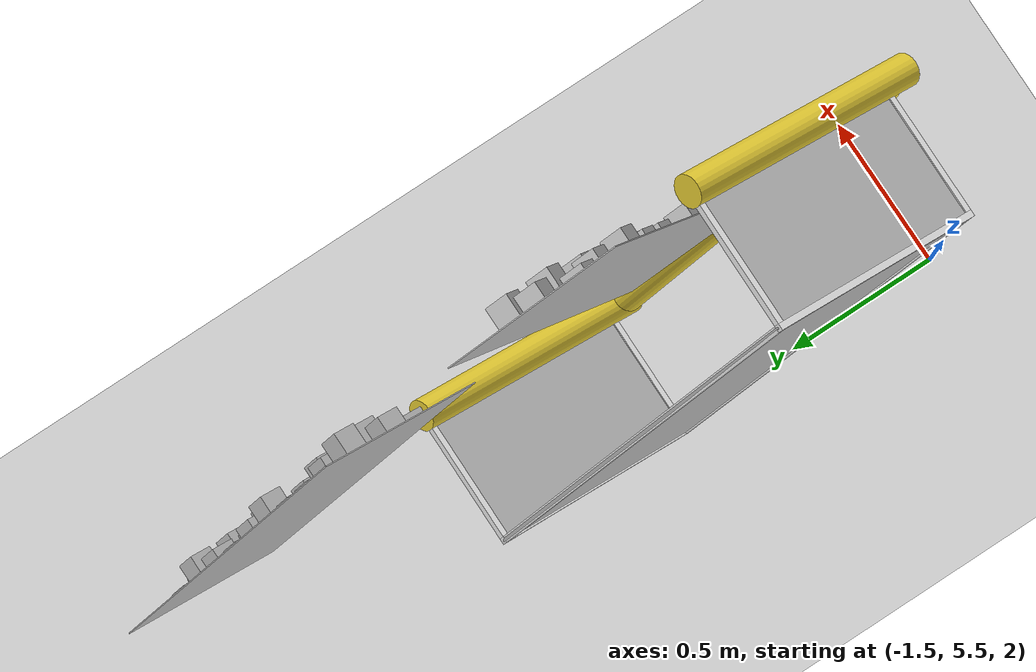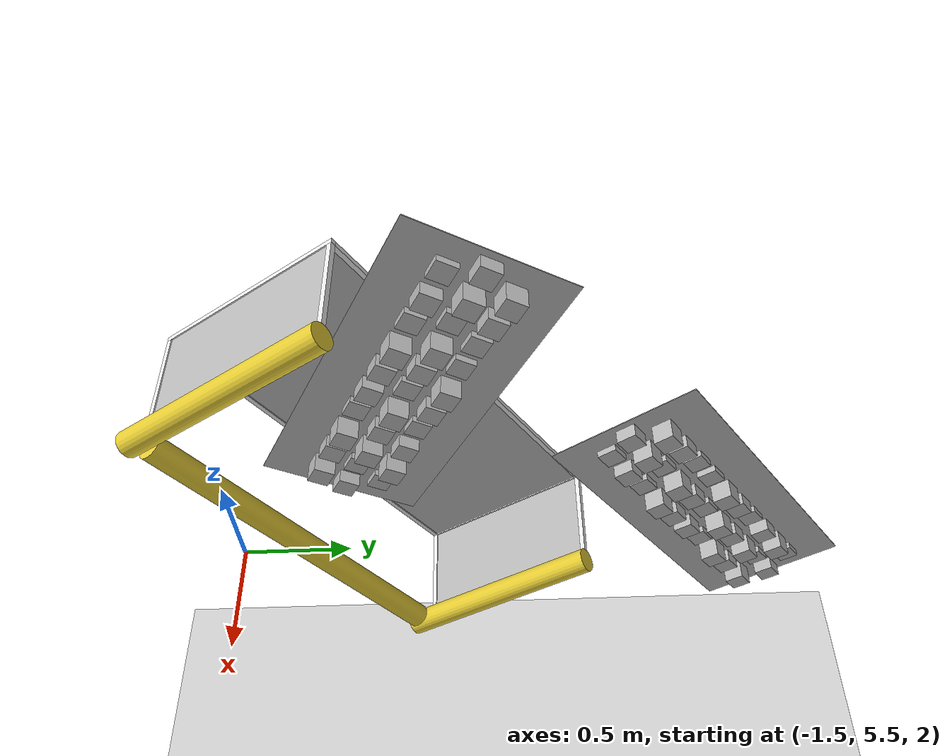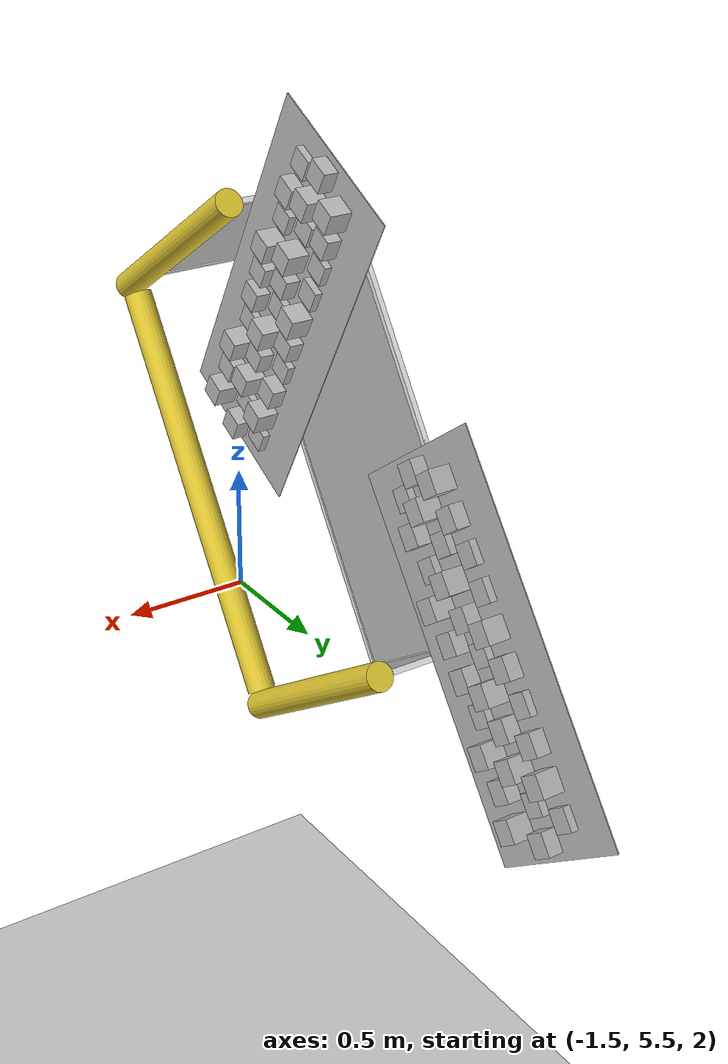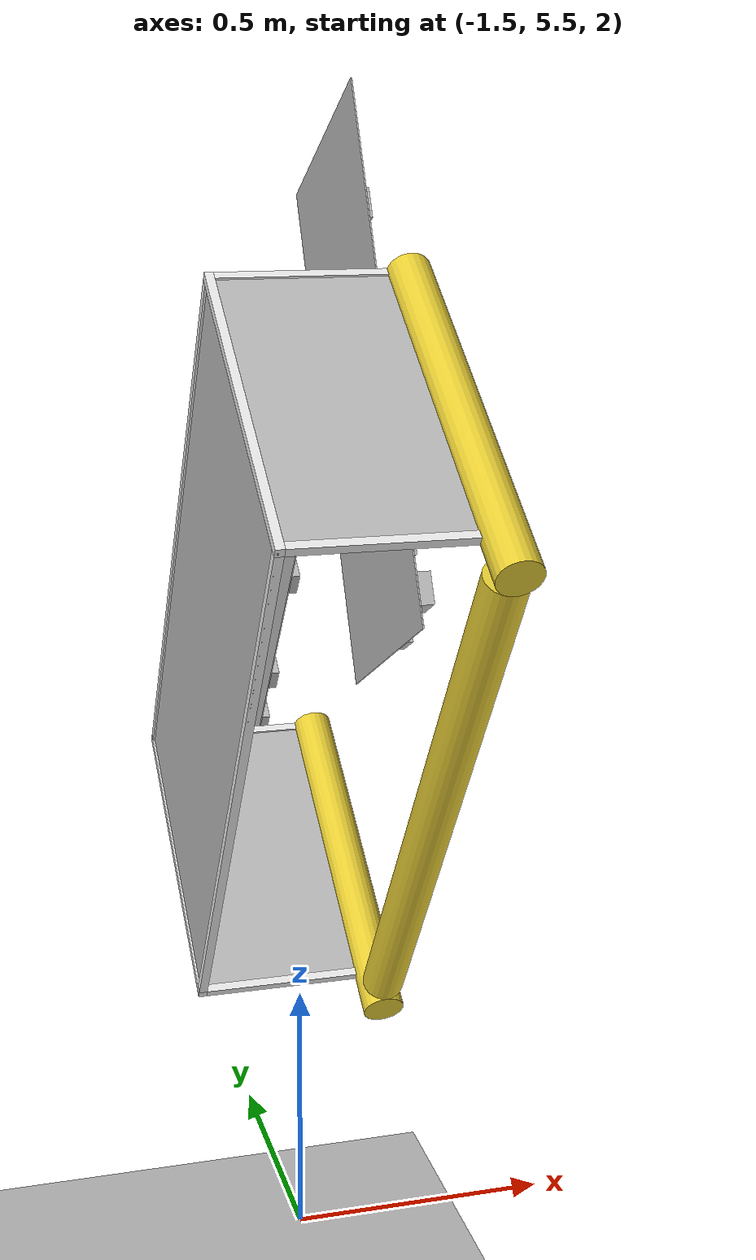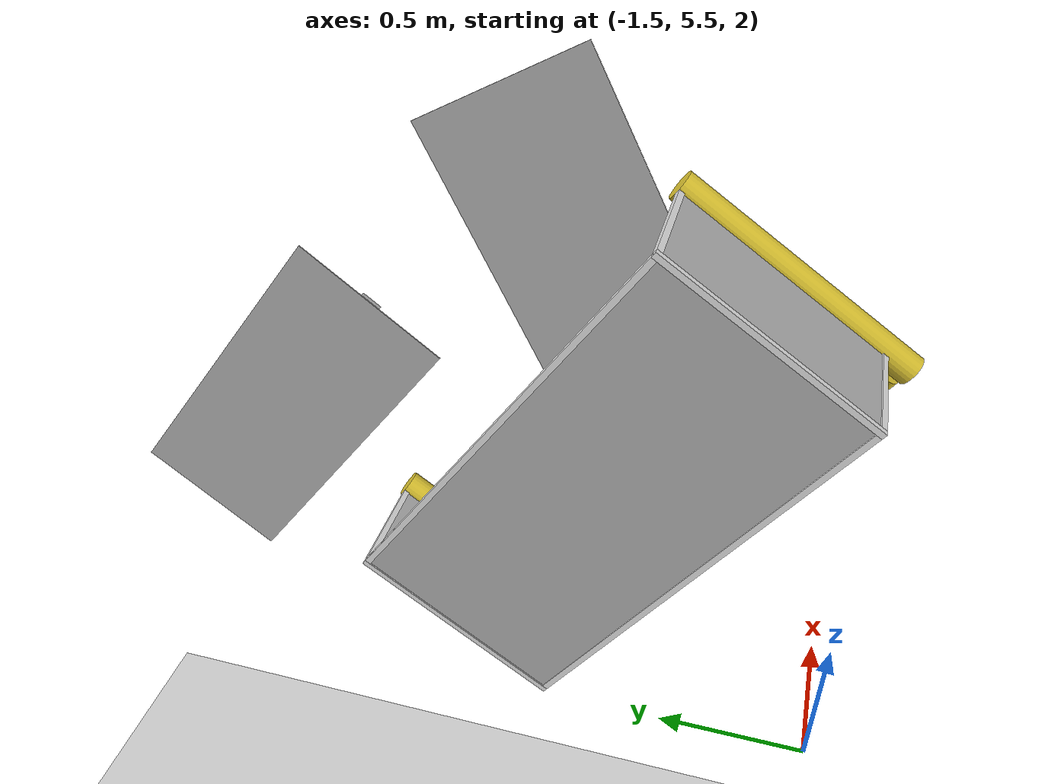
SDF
<sdf version="1.4">
 <world name="default">
  <model name="ground_plane">
   <static>1</static>
   <link name="link">
    <collision name="collision">
     <geometry><plane><normal>0 0 1</normal><size>100 100</size></plane></geometry>
     <surface><friction><ode><mu>100</mu><mu2>50</mu2></ode></friction></surface>
    </collision>
    <visual name="visual">
     <cast_shadows>0</cast_shadows>
     <geometry><plane><normal>0 0 1</normal><size>100 100</size></plane></geometry>
     <material>
      <script><uri>file://media/materials/scripts/gazebo.material</uri><name>Gazebo/Grey</name></script>
     </material>
    </visual>
    <velocity_decay><linear>0</linear><angular>0</angular></velocity_decay>
   </link>
  </model>
  <model name="frc2016_roughterrain">
   <static>1</static>
   <link name="link">
    <visual name="platform">
     <pose>0 0 0.08269 0 -0 0</pose>
     <geometry><box><size>1.27 0.5969 0.003175</size></box></geometry>
    </visual>
    <collision name="platform">
     <pose>0 0 0.08269 0 -0 0</pose>
     <geometry><box><size>1.27 0.5969 0.003175</size></box></geometry>
    </collision>
    <visual name="row1_block1_sm">
     <pose>0.51435 0.1143 0.09698 0 -0 0</pose>
     <geometry><box><size>0.0762 0.0762 0.0254</size></box></geometry>
    </visual>
    <collision name="row1_block1_sm">
     <pose>0.51435 0.1143 0.09698 0 -0 0</pose>
     <geometry><box><size>0.0762 0.0762 0.0254</size></box></geometry>
    </collision>
    <visual name="row1_block2_lg">
     <pose>0.40005 0.1143 0.12238 0 -0 0</pose>
     <geometry><box><size>0.0762 0.0762 0.0762</size></box></geometry>
    </visual>
    <collision name="row1_block2_lg">
     <pose>0.40005 0.1143 0.12238 0 -0 0</pose>
     <geometry><box><size>0.0762 0.0762 0.0762</size></box></geometry>
    </collision>
    <visual name="row1_block3_md">
     <pose>0.28575 0.1143 0.10968 0 -0 0</pose>
     <geometry><box><size>0.0762 0.0762 0.0508</size></box></geometry>
    </visual>
    <collision name="row1_block3_md">
     <pose>0.28575 0.1143 0.10968 0 -0 0</pose>
     <geometry><box><size>0.0762 0.0762 0.0508</size></box></geometry>
    </collision>
    <visual name="row1_block4_sm">
     <pose>0.17145 0.1143 0.09698 0 -0 0</pose>
     <geometry><box><size>0.0762 0.0762 0.0254</size></box></geometry>
    </visual>
    <collision name="row1_block4_sm">
     <pose>0.17145 0.1143 0.09698 0 -0 0</pose>
     <geometry><box><size>0.0762 0.0762 0.0254</size></box></geometry>
    </collision>
    <visual name="row1_block5_md">
     <pose>0.05715 0.1143 0.10968 0 -0 0</pose>
     <geometry><box><size>0.0762 0.0762 0.0508</size></box></geometry>
    </visual>
    <collision name="row1_block5_md">
     <pose>0.05715 0.1143 0.10968 0 -0 0</pose>
     <geometry><box><size>0.0762 0.0762 0.0508</size></box></geometry>
    </collision>
    <visual name="row1_block6_lg">
     <pose>-0.05715 0.1143 0.12238 0 -0 0</pose>
     <geometry><box><size>0.0762 0.0762 0.0762</size></box></geometry>
    </visual>
    <collision name="row1_block6_lg">
     <pose>-0.05715 0.1143 0.12238 0 -0 0</pose>
     <geometry><box><size>0.0762 0.0762 0.0762</size></box></geometry>
    </collision>
    <visual name="row1_block7_sm">
     <pose>-0.17145 0.1143 0.09698 0 -0 0</pose>
     <geometry><box><size>0.0762 0.0762 0.0254</size></box></geometry>
    </visual>
    <collision name="row1_block7_sm">
     <pose>-0.17145 0.1143 0.09698 0 -0 0</pose>
     <geometry><box><size>0.0762 0.0762 0.0254</size></box></geometry>
    </collision>
    <visual name="row1_block8_sm">
     <pose>-0.28575 0.1143 0.09698 0 -0 0</pose>
     <geometry><box><size>0.0762 0.0762 0.0254</size></box></geometry>
    </visual>
    <collision name="row1_block8_sm">
     <pose>-0.28575 0.1143 0.09698 0 -0 0</pose>
     <geometry><box><size>0.0762 0.0762 0.0254</size></box></geometry>
    </collision>
    <visual name="row1_block9_md">
     <pose>-0.40005 0.1143 0.10968 0 -0 0</pose>
     <geometry><box><size>0.0762 0.0762 0.0508</size></box></geometry>
    </visual>
    <collision name="row1_block9_md">
     <pose>-0.40005 0.1143 0.10968 0 -0 0</pose>
     <geometry><box><size>0.0762 0.0762 0.0508</size></box></geometry>
    </collision>
    <visual name="row1_block10_lg">
     <pose>-0.51435 0.1143 0.12238 0 -0 0</pose>
     <geometry><box><size>0.0762 0.0762 0.0762</size></box></geometry>
    </visual>
    <collision name="row1_block10_lg">
     <pose>-0.51435 0.1143 0.12238 0 -0 0</pose>
     <geometry><box><size>0.0762 0.0762 0.0762</size></box></geometry>
    </collision>
    <visual name="row2_block1_md">
     <pose>0.5715 0 0.10968 0 -0 0</pose>
     <geometry><box><size>0.0762 0.0762 0.0508</size></box></geometry>
    </visual>
    <collision name="row2_block1_md">
     <pose>0.5715 0 0.10968 0 -0 0</pose>
     <geometry><box><size>0.0762 0.0762 0.0508</size></box></geometry>
    </collision>
    <visual name="row2_block2_sm">
     <pose>0.4572 0 0.09698 0 -0 0</pose>
     <geometry><box><size>0.0762 0.0762 0.0254</size></box></geometry>
    </visual>
    <collision name="row2_block2_sm">
     <pose>0.4572 0 0.09698 0 -0 0</pose>
     <geometry><box><size>0.0762 0.0762 0.0254</size></box></geometry>
    </collision>
    <visual name="row2_block3_lg">
     <pose>0.3429 0 0.12238 0 -0 0</pose>
     <geometry><box><size>0.0762 0.0762 0.0762</size></box></geometry>
    </visual>
    <collision name="row2_block3_lg">
     <pose>0.3429 0 0.12238 0 -0 0</pose>
     <geometry><box><size>0.0762 0.0762 0.0762</size></box></geometry>
    </collision>
    <visual name="row2_block4_md">
     <pose>0.2286 0 0.10968 0 -0 0</pose>
     <geometry><box><size>0.0762 0.0762 0.0508</size></box></geometry>
    </visual>
    <collision name="row2_block4_md">
     <pose>0.2286 0 0.10968 0 -0 0</pose>
     <geometry><box><size>0.0762 0.0762 0.0508</size></box></geometry>
    </collision>
    <visual name="row2_block5_lg">
     <pose>0.1143 0 0.12238 0 -0 0</pose>
     <geometry><box><size>0.0762 0.0762 0.0762</size></box></geometry>
    </visual>
    <collision name="row2_block5_lg">
     <pose>0.1143 0 0.12238 0 -0 0</pose>
     <geometry><box><size>0.0762 0.0762 0.0762</size></box></geometry>
    </collision>
    <visual name="row2_block6_sm">
     <pose>0 0 0.09698 0 -0 0</pose>
     <geometry><box><size>0.0762 0.0762 0.0254</size></box></geometry>
    </visual>
    <collision name="row2_block6_sm">
     <pose>0 0 0.09698 0 -0 0</pose>
     <geometry><box><size>0.0762 0.0762 0.0254</size></box></geometry>
    </collision>
    <visual name="row2_block7_md">
     <pose>-0.1143 0 0.10968 0 -0 0</pose>
     <geometry><box><size>0.0762 0.0762 0.0508</size></box></geometry>
    </visual>
    <collision name="row2_block7_md">
     <pose>-0.1143 0 0.10968 0 -0 0</pose>
     <geometry><box><size>0.0762 0.0762 0.0508</size></box></geometry>
    </collision>
    <visual name="row2_block8_lg">
     <pose>-0.2286 0 0.12238 0 -0 0</pose>
     <geometry><box><size>0.0762 0.0762 0.0762</size></box></geometry>
    </visual>
    <collision name="row2_block8_lg">
     <pose>-0.2286 0 0.12238 0 -0 0</pose>
     <geometry><box><size>0.0762 0.0762 0.0762</size></box></geometry>
    </collision>
    <visual name="row2_block9_sm">
     <pose>-0.3429 0 0.09698 0 -0 0</pose>
     <geometry><box><size>0.0762 0.0762 0.0254</size></box></geometry>
    </visual>
    <collision name="row2_block9_sm">
     <pose>-0.3429 0 0.09698 0 -0 0</pose>
     <geometry><box><size>0.0762 0.0762 0.0254</size></box></geometry>
    </collision>
    <visual name="row2_block10_lg">
     <pose>-0.4572 0 0.12238 0 -0 0</pose>
     <geometry><box><size>0.0762 0.0762 0.0762</size></box></geometry>
    </visual>
    <collision name="row2_block10_lg">
     <pose>-0.4572 0 0.12238 0 -0 0</pose>
     <geometry><box><size>0.0762 0.0762 0.0762</size></box></geometry>
    </collision>
    <visual name="row2_block11_md">
     <pose>-0.5715 0 0.10968 0 -0 0</pose>
     <geometry><box><size>0.0762 0.0762 0.0508</size></box></geometry>
    </visual>
    <collision name="row2_block11_md">
     <pose>-0.5715 0 0.10968 0 -0 0</pose>
     <geometry><box><size>0.0762 0.0762 0.0508</size></box></geometry>
    </collision>
    <visual name="row3_block1_lg">
     <pose>0.51435 -0.1143 0.12238 0 -0 0</pose>
     <geometry><box><size>0.0762 0.0762 0.0762</size></box></geometry>
    </visual>
    <collision name="row3_block1_lg">
     <pose>0.51435 -0.1143 0.12238 0 -0 0</pose>
     <geometry><box><size>0.0762 0.0762 0.0762</size></box></geometry>
    </collision>
    <visual name="row3_block2_md">
     <pose>0.40005 -0.1143 0.10968 0 -0 0</pose>
     <geometry><box><size>0.0762 0.0762 0.0508</size></box></geometry>
    </visual>
    <collision name="row3_block2_md">
     <pose>0.40005 -0.1143 0.10968 0 -0 0</pose>
     <geometry><box><size>0.0762 0.0762 0.0508</size></box></geometry>
    </collision>
    <visual name="row3_block3_lg">
     <pose>0.28575 -0.1143 0.12238 0 -0 0</pose>
     <geometry><box><size>0.0762 0.0762 0.0762</size></box></geometry>
    </visual>
    <collision name="row3_block3_lg">
     <pose>0.28575 -0.1143 0.12238 0 -0 0</pose>
     <geometry><box><size>0.0762 0.0762 0.0762</size></box></geometry>
    </collision>
    <visual name="row3_block4_sm">
     <pose>0.17145 -0.1143 0.09698 0 -0 0</pose>
     <geometry><box><size>0.0762 0.0762 0.0254</size></box></geometry>
    </visual>
    <collision name="row3_block4_sm">
     <pose>0.17145 -0.1143 0.09698 0 -0 0</pose>
     <geometry><box><size>0.0762 0.0762 0.0254</size></box></geometry>
    </collision>
    <visual name="row3_block5_md">
     <pose>0.05715 -0.1143 0.10968 0 -0 0</pose>
     <geometry><box><size>0.0762 0.0762 0.0508</size></box></geometry>
    </visual>
    <collision name="row3_block5_md">
     <pose>0.05715 -0.1143 0.10968 0 -0 0</pose>
     <geometry><box><size>0.0762 0.0762 0.0508</size></box></geometry>
    </collision>
    <visual name="row3_block6_md">
     <pose>-0.05715 -0.1143 0.10968 0 -0 0</pose>
     <geometry><box><size>0.0762 0.0762 0.0508</size></box></geometry>
    </visual>
    <collision name="row3_block6_md">
     <pose>-0.05715 -0.1143 0.10968 0 -0 0</pose>
     <geometry><box><size>0.0762 0.0762 0.0508</size></box></geometry>
    </collision>
    <visual name="row3_block7_lg">
     <pose>-0.17145 -0.1143 0.12238 0 -0 0</pose>
     <geometry><box><size>0.0762 0.0762 0.0762</size></box></geometry>
    </visual>
    <collision name="row3_block7_lg">
     <pose>-0.17145 -0.1143 0.12238 0 -0 0</pose>
     <geometry><box><size>0.0762 0.0762 0.0762</size></box></geometry>
    </collision>
    <visual name="row3_block8_sm">
     <pose>-0.28575 -0.1143 0.09698 0 -0 0</pose>
     <geometry><box><size>0.0762 0.0762 0.0254</size></box></geometry>
    </visual>
    <collision name="row3_block8_sm">
     <pose>-0.28575 -0.1143 0.09698 0 -0 0</pose>
     <geometry><box><size>0.0762 0.0762 0.0254</size></box></geometry>
    </collision>
    <visual name="row3_block9_md">
     <pose>-0.40005 -0.1143 0.10968 0 -0 0</pose>
     <geometry><box><size>0.0762 0.0762 0.0508</size></box></geometry>
    </visual>
    <collision name="row3_block9_md">
     <pose>-0.40005 -0.1143 0.10968 0 -0 0</pose>
     <geometry><box><size>0.0762 0.0762 0.0508</size></box></geometry>
    </collision>
    <visual name="row3_block10_sm">
     <pose>-0.51435 -0.1143 0.09698 0 -0 0</pose>
     <geometry><box><size>0.0762 0.0762 0.0254</size></box></geometry>
    </visual>
    <collision name="row3_block10_sm">
     <pose>-0.51435 -0.1143 0.09698 0 -0 0</pose>
     <geometry><box><size>0.0762 0.0762 0.0254</size></box></geometry>
    </collision>
    <velocity_decay><linear>0</linear><angular>0</angular></velocity_decay>
   </link>
   <pose>-1.22765 6.41707 3.53548 -1.57835 1.07404 -1.57744</pose>
  </model>
  <model name="frc2016_roughterrain_3">
   <static>1</static>
   <link name="link">
    <visual name="platform">
     <pose>0 0 0.08269 0 -0 0</pose>
     <geometry><box><size>1.27 0.5969 0.003175</size></box></geometry>
    </visual>
    <collision name="platform">
     <pose>0 0 0.08269 0 -0 0</pose>
     <geometry><box><size>1.27 0.5969 0.003175</size></box></geometry>
    </collision>
    <visual name="row1_block1_sm">
     <pose>0.51435 0.1143 0.09698 0 -0 0</pose>
     <geometry><box><size>0.0762 0.0762 0.0254</size></box></geometry>
    </visual>
    <collision name="row1_block1_sm">
     <pose>0.51435 0.1143 0.09698 0 -0 0</pose>
     <geometry><box><size>0.0762 0.0762 0.0254</size></box></geometry>
    </collision>
    <visual name="row1_block2_lg">
     <pose>0.40005 0.1143 0.12238 0 -0 0</pose>
     <geometry><box><size>0.0762 0.0762 0.0762</size></box></geometry>
    </visual>
    <collision name="row1_block2_lg">
     <pose>0.40005 0.1143 0.12238 0 -0 0</pose>
     <geometry><box><size>0.0762 0.0762 0.0762</size></box></geometry>
    </collision>
    <visual name="row1_block3_md">
     <pose>0.28575 0.1143 0.10968 0 -0 0</pose>
     <geometry><box><size>0.0762 0.0762 0.0508</size></box></geometry>
    </visual>
    <collision name="row1_block3_md">
     <pose>0.28575 0.1143 0.10968 0 -0 0</pose>
     <geometry><box><size>0.0762 0.0762 0.0508</size></box></geometry>
    </collision>
    <visual name="row1_block4_sm">
     <pose>0.17145 0.1143 0.09698 0 -0 0</pose>
     <geometry><box><size>0.0762 0.0762 0.0254</size></box></geometry>
    </visual>
    <collision name="row1_block4_sm">
     <pose>0.17145 0.1143 0.09698 0 -0 0</pose>
     <geometry><box><size>0.0762 0.0762 0.0254</size></box></geometry>
    </collision>
    <visual name="row1_block5_md">
     <pose>0.05715 0.1143 0.10968 0 -0 0</pose>
     <geometry><box><size>0.0762 0.0762 0.0508</size></box></geometry>
    </visual>
    <collision name="row1_block5_md">
     <pose>0.05715 0.1143 0.10968 0 -0 0</pose>
     <geometry><box><size>0.0762 0.0762 0.0508</size></box></geometry>
    </collision>
    <visual name="row1_block6_lg">
     <pose>-0.05715 0.1143 0.12238 0 -0 0</pose>
     <geometry><box><size>0.0762 0.0762 0.0762</size></box></geometry>
    </visual>
    <collision name="row1_block6_lg">
     <pose>-0.05715 0.1143 0.12238 0 -0 0</pose>
     <geometry><box><size>0.0762 0.0762 0.0762</size></box></geometry>
    </collision>
    <visual name="row1_block7_sm">
     <pose>-0.17145 0.1143 0.09698 0 -0 0</pose>
     <geometry><box><size>0.0762 0.0762 0.0254</size></box></geometry>
    </visual>
    <collision name="row1_block7_sm">
     <pose>-0.17145 0.1143 0.09698 0 -0 0</pose>
     <geometry><box><size>0.0762 0.0762 0.0254</size></box></geometry>
    </collision>
    <visual name="row1_block8_sm">
     <pose>-0.28575 0.1143 0.09698 0 -0 0</pose>
     <geometry><box><size>0.0762 0.0762 0.0254</size></box></geometry>
    </visual>
    <collision name="row1_block8_sm">
     <pose>-0.28575 0.1143 0.09698 0 -0 0</pose>
     <geometry><box><size>0.0762 0.0762 0.0254</size></box></geometry>
    </collision>
    <visual name="row1_block9_md">
     <pose>-0.40005 0.1143 0.10968 0 -0 0</pose>
     <geometry><box><size>0.0762 0.0762 0.0508</size></box></geometry>
    </visual>
    <collision name="row1_block9_md">
     <pose>-0.40005 0.1143 0.10968 0 -0 0</pose>
     <geometry><box><size>0.0762 0.0762 0.0508</size></box></geometry>
    </collision>
    <visual name="row1_block10_lg">
     <pose>-0.51435 0.1143 0.12238 0 -0 0</pose>
     <geometry><box><size>0.0762 0.0762 0.0762</size></box></geometry>
    </visual>
    <collision name="row1_block10_lg">
     <pose>-0.51435 0.1143 0.12238 0 -0 0</pose>
     <geometry><box><size>0.0762 0.0762 0.0762</size></box></geometry>
    </collision>
    <visual name="row2_block1_md">
     <pose>0.5715 0 0.10968 0 -0 0</pose>
     <geometry><box><size>0.0762 0.0762 0.0508</size></box></geometry>
    </visual>
    <collision name="row2_block1_md">
     <pose>0.5715 0 0.10968 0 -0 0</pose>
     <geometry><box><size>0.0762 0.0762 0.0508</size></box></geometry>
    </collision>
    <visual name="row2_block2_sm">
     <pose>0.4572 0 0.09698 0 -0 0</pose>
     <geometry><box><size>0.0762 0.0762 0.0254</size></box></geometry>
    </visual>
    <collision name="row2_block2_sm">
     <pose>0.4572 0 0.09698 0 -0 0</pose>
     <geometry><box><size>0.0762 0.0762 0.0254</size></box></geometry>
    </collision>
    <visual name="row2_block3_lg">
     <pose>0.3429 0 0.12238 0 -0 0</pose>
     <geometry><box><size>0.0762 0.0762 0.0762</size></box></geometry>
    </visual>
    <collision name="row2_block3_lg">
     <pose>0.3429 0 0.12238 0 -0 0</pose>
     <geometry><box><size>0.0762 0.0762 0.0762</size></box></geometry>
    </collision>
    <visual name="row2_block4_md">
     <pose>0.2286 0 0.10968 0 -0 0</pose>
     <geometry><box><size>0.0762 0.0762 0.0508</size></box></geometry>
    </visual>
    <collision name="row2_block4_md">
     <pose>0.2286 0 0.10968 0 -0 0</pose>
     <geometry><box><size>0.0762 0.0762 0.0508</size></box></geometry>
    </collision>
    <visual name="row2_block5_lg">
     <pose>0.1143 0 0.12238 0 -0 0</pose>
     <geometry><box><size>0.0762 0.0762 0.0762</size></box></geometry>
    </visual>
    <collision name="row2_block5_lg">
     <pose>0.1143 0 0.12238 0 -0 0</pose>
     <geometry><box><size>0.0762 0.0762 0.0762</size></box></geometry>
    </collision>
    <visual name="row2_block6_sm">
     <pose>0 0 0.09698 0 -0 0</pose>
     <geometry><box><size>0.0762 0.0762 0.0254</size></box></geometry>
    </visual>
    <collision name="row2_block6_sm">
     <pose>0 0 0.09698 0 -0 0</pose>
     <geometry><box><size>0.0762 0.0762 0.0254</size></box></geometry>
    </collision>
    <visual name="row2_block7_md">
     <pose>-0.1143 0 0.10968 0 -0 0</pose>
     <geometry><box><size>0.0762 0.0762 0.0508</size></box></geometry>
    </visual>
    <collision name="row2_block7_md">
     <pose>-0.1143 0 0.10968 0 -0 0</pose>
     <geometry><box><size>0.0762 0.0762 0.0508</size></box></geometry>
    </collision>
    <visual name="row2_block8_lg">
     <pose>-0.2286 0 0.12238 0 -0 0</pose>
     <geometry><box><size>0.0762 0.0762 0.0762</size></box></geometry>
    </visual>
    <collision name="row2_block8_lg">
     <pose>-0.2286 0 0.12238 0 -0 0</pose>
     <geometry><box><size>0.0762 0.0762 0.0762</size></box></geometry>
    </collision>
    <visual name="row2_block9_sm">
     <pose>-0.3429 0 0.09698 0 -0 0</pose>
     <geometry><box><size>0.0762 0.0762 0.0254</size></box></geometry>
    </visual>
    <collision name="row2_block9_sm">
     <pose>-0.3429 0 0.09698 0 -0 0</pose>
     <geometry><box><size>0.0762 0.0762 0.0254</size></box></geometry>
    </collision>
    <visual name="row2_block10_lg">
     <pose>-0.4572 0 0.12238 0 -0 0</pose>
     <geometry><box><size>0.0762 0.0762 0.0762</size></box></geometry>
    </visual>
    <collision name="row2_block10_lg">
     <pose>-0.4572 0 0.12238 0 -0 0</pose>
     <geometry><box><size>0.0762 0.0762 0.0762</size></box></geometry>
    </collision>
    <visual name="row2_block11_md">
     <pose>-0.5715 0 0.10968 0 -0 0</pose>
     <geometry><box><size>0.0762 0.0762 0.0508</size></box></geometry>
    </visual>
    <collision name="row2_block11_md">
     <pose>-0.5715 0 0.10968 0 -0 0</pose>
     <geometry><box><size>0.0762 0.0762 0.0508</size></box></geometry>
    </collision>
    <visual name="row3_block1_lg">
     <pose>0.51435 -0.1143 0.12238 0 -0 0</pose>
     <geometry><box><size>0.0762 0.0762 0.0762</size></box></geometry>
    </visual>
    <collision name="row3_block1_lg">
     <pose>0.51435 -0.1143 0.12238 0 -0 0</pose>
     <geometry><box><size>0.0762 0.0762 0.0762</size></box></geometry>
    </collision>
    <visual name="row3_block2_md">
     <pose>0.40005 -0.1143 0.10968 0 -0 0</pose>
     <geometry><box><size>0.0762 0.0762 0.0508</size></box></geometry>
    </visual>
    <collision name="row3_block2_md">
     <pose>0.40005 -0.1143 0.10968 0 -0 0</pose>
     <geometry><box><size>0.0762 0.0762 0.0508</size></box></geometry>
    </collision>
    <visual name="row3_block3_lg">
     <pose>0.28575 -0.1143 0.12238 0 -0 0</pose>
     <geometry><box><size>0.0762 0.0762 0.0762</size></box></geometry>
    </visual>
    <collision name="row3_block3_lg">
     <pose>0.28575 -0.1143 0.12238 0 -0 0</pose>
     <geometry><box><size>0.0762 0.0762 0.0762</size></box></geometry>
    </collision>
    <visual name="row3_block4_sm">
     <pose>0.17145 -0.1143 0.09698 0 -0 0</pose>
     <geometry><box><size>0.0762 0.0762 0.0254</size></box></geometry>
    </visual>
    <collision name="row3_block4_sm">
     <pose>0.17145 -0.1143 0.09698 0 -0 0</pose>
     <geometry><box><size>0.0762 0.0762 0.0254</size></box></geometry>
    </collision>
    <visual name="row3_block5_md">
     <pose>0.05715 -0.1143 0.10968 0 -0 0</pose>
     <geometry><box><size>0.0762 0.0762 0.0508</size></box></geometry>
    </visual>
    <collision name="row3_block5_md">
     <pose>0.05715 -0.1143 0.10968 0 -0 0</pose>
     <geometry><box><size>0.0762 0.0762 0.0508</size></box></geometry>
    </collision>
    <visual name="row3_block6_md">
     <pose>-0.05715 -0.1143 0.10968 0 -0 0</pose>
     <geometry><box><size>0.0762 0.0762 0.0508</size></box></geometry>
    </visual>
    <collision name="row3_block6_md">
     <pose>-0.05715 -0.1143 0.10968 0 -0 0</pose>
     <geometry><box><size>0.0762 0.0762 0.0508</size></box></geometry>
    </collision>
    <visual name="row3_block7_lg">
     <pose>-0.17145 -0.1143 0.12238 0 -0 0</pose>
     <geometry><box><size>0.0762 0.0762 0.0762</size></box></geometry>
    </visual>
    <collision name="row3_block7_lg">
     <pose>-0.17145 -0.1143 0.12238 0 -0 0</pose>
     <geometry><box><size>0.0762 0.0762 0.0762</size></box></geometry>
    </collision>
    <visual name="row3_block8_sm">
     <pose>-0.28575 -0.1143 0.09698 0 -0 0</pose>
     <geometry><box><size>0.0762 0.0762 0.0254</size></box></geometry>
    </visual>
    <collision name="row3_block8_sm">
     <pose>-0.28575 -0.1143 0.09698 0 -0 0</pose>
     <geometry><box><size>0.0762 0.0762 0.0254</size></box></geometry>
    </collision>
    <visual name="row3_block9_md">
     <pose>-0.40005 -0.1143 0.10968 0 -0 0</pose>
     <geometry><box><size>0.0762 0.0762 0.0508</size></box></geometry>
    </visual>
    <collision name="row3_block9_md">
     <pose>-0.40005 -0.1143 0.10968 0 -0 0</pose>
     <geometry><box><size>0.0762 0.0762 0.0508</size></box></geometry>
    </collision>
    <visual name="row3_block10_sm">
     <pose>-0.51435 -0.1143 0.09698 0 -0 0</pose>
     <geometry><box><size>0.0762 0.0762 0.0254</size></box></geometry>
    </visual>
    <collision name="row3_block10_sm">
     <pose>-0.51435 -0.1143 0.09698 0 -0 0</pose>
     <geometry><box><size>0.0762 0.0762 0.0254</size></box></geometry>
    </collision>
    <velocity_decay><linear>0</linear><angular>0</angular></velocity_decay>
   </link>
   <pose>-1.22986 7.52597 2.79294 1.58005 0.939946 1.57827</pose>
  </model>
  <model name="RoboCup 2014 SPL Goal_0">
   <static>1</static>
   <link name="left_post">
    <pose>0 0.8 0.45 0 -0 0</pose>
    <collision name="collision">
     <geometry><cylinder><radius>0.05</radius><length>0.9</length></cylinder></geometry>
    </collision>
    <visual name="visual">
     <geometry><cylinder><radius>0.05</radius><length>0.9</length></cylinder></geometry>
     <material>
      <script><uri>file://media/materials/scripts/gazebo.material</uri><name>Gazebo/ZincYellow</name></script>
     </material>
    </visual>
    <velocity_decay><linear>0</linear><angular>0</angular></velocity_decay>
   </link>
   <link name="left_support_horiz_lower">
    <pose>0.24 0.8 0.01 0 -0 0</pose>
    <collision name="collision"><geometry><box><size>0.38 0.02 0.02</size></box></geometry></collision>
    <visual name="visual">
     <geometry><box><size>0.38 0.02 0.02</size></box></geometry>
     <material>
      <script><uri>file://media/materials/scripts/gazebo.material</uri><name>Gazebo/White</name></script>
     </material>
    </visual>
    <velocity_decay><linear>0</linear><angular>0</angular></velocity_decay>
   </link>
   <link name="left_support_horiz_upper">
    <pose>0.24 0.8 0.79 0 -0 0</pose>
    <collision name="collision"><geometry><box><size>0.38 0.02 0.02</size></box></geometry></collision>
    <visual name="visual">
     <geometry><box><size>0.38 0.02 0.02</size></box></geometry>
     <material>
      <script><uri>file://media/materials/scripts/gazebo.material</uri><name>Gazebo/White</name></script>
     </material>
    </visual>
    <velocity_decay><linear>0</linear><angular>0</angular></velocity_decay>
   </link>
   <link name="left_support_vertical">
    <pose>0.44 0.8 0.4 3.14159 1.57079 3.14159</pose>
    <collision name="collision"><geometry><box><size>0.8 0.02 0.02</size></box></geometry></collision>
    <visual name="visual">
     <geometry><box><size>0.8 0.02 0.02</size></box></geometry>
     <material>
      <script><uri>file://media/materials/scripts/gazebo.material</uri><name>Gazebo/White</name></script>
     </material>
    </visual>
    <velocity_decay><linear>0</linear><angular>0</angular></velocity_decay>
   </link>
   <link name="right_support_horiz_lower">
    <pose>0.24 -0.8 0.01 0 -0 0</pose>
    <collision name="collision"><geometry><box><size>0.38 0.02 0.02</size></box></geometry></collision>
    <visual name="visual">
     <geometry><box><size>0.38 0.02 0.02</size></box></geometry>
     <material>
      <script><uri>file://media/materials/scripts/gazebo.material</uri><name>Gazebo/White</name></script>
     </material>
    </visual>
    <velocity_decay><linear>0</linear><angular>0</angular></velocity_decay>
   </link>
   <link name="right_support_horiz_upper">
    <pose>0.24 -0.8 0.79 0 -0 0</pose>
    <collision name="collision"><geometry><box><size>0.38 0.02 0.02</size></box></geometry></collision>
    <visual name="visual">
     <geometry><box><size>0.38 0.02 0.02</size></box></geometry>
     <material>
      <script><uri>file://media/materials/scripts/gazebo.material</uri><name>Gazebo/White</name></script>
     </material>
    </visual>
    <velocity_decay><linear>0</linear><angular>0</angular></velocity_decay>
   </link>
   <link name="right_support_vertical">
    <pose>0.44 -0.8 0.4 3.14159 1.57079 3.14159</pose>
    <collision name="collision"><geometry><box><size>0.8 0.02 0.02</size></box></geometry></collision>
    <visual name="visual">
     <geometry><box><size>0.8 0.02 0.02</size></box></geometry>
     <material>
      <script><uri>file://media/materials/scripts/gazebo.material</uri><name>Gazebo/White</name></script>
     </material>
    </visual>
    <velocity_decay><linear>0</linear><angular>0</angular></velocity_decay>
   </link>
   <link name="center_support_horiz_lower">
    <pose>0.44 0 0.01 3.14159 1.57079 3.14159</pose>
    <collision name="collision"><geometry><box><size>0.02 1.58 0.02</size></box></geometry></collision>
    <visual name="visual">
     <geometry><box><size>0.02 1.58 0.02</size></box></geometry>
     <material>
      <script><uri>file://media/materials/scripts/gazebo.material</uri><name>Gazebo/White</name></script>
     </material>
    </visual>
    <velocity_decay><linear>0</linear><angular>0</angular></velocity_decay>
   </link>
   <link name="center_support_horiz_upper">
    <pose>0.44 0 0.79 3.14159 1.57079 3.14159</pose>
    <collision name="collision"><geometry><box><size>0.02 1.58 0.02</size></box></geometry></collision>
    <visual name="visual">
     <geometry><box><size>0.02 1.58 0.02</size></box></geometry>
     <material>
      <script><uri>file://media/materials/scripts/gazebo.material</uri><name>Gazebo/White</name></script>
     </material>
    </visual>
    <velocity_decay><linear>0</linear><angular>0</angular></velocity_decay>
   </link>
   <link name="right_post">
    <pose>0 -0.8 0.45 0 -0 0</pose>
    <collision name="collision">
     <geometry><cylinder><radius>0.05</radius><length>0.9</length></cylinder></geometry>
    </collision>
    <visual name="visual">
     <geometry><cylinder><radius>0.05</radius><length>0.9</length></cylinder></geometry>
     <material>
      <script><uri>file://media/materials/scripts/gazebo.material</uri><name>Gazebo/ZincYellow</name></script>
     </material>
    </visual>
    <velocity_decay><linear>0</linear><angular>0</angular></velocity_decay>
   </link>
   <link name="crossbar">
    <pose>0 0 0.85 1.57 1.57 1.39418e-13</pose>
    <collision name="collision">
     <geometry><cylinder><radius>0.05</radius><length>1.5</length></cylinder></geometry>
    </collision>
    <visual name="visual">
     <geometry><cylinder><radius>0.05</radius><length>1.5</length></cylinder></geometry>
     <material>
      <script><uri>file://media/materials/scripts/gazebo.material</uri><name>Gazebo/ZincYellow</name></script>
     </material>
    </visual>
    <velocity_decay><linear>0</linear><angular>0</angular></velocity_decay>
   </link>
   <link name="center_net">
    <pose>0.44 0 0.4 0 -0 0</pose>
    <collision name="collision"><geometry><box><size>0.01 1.6 0.8</size></box></geometry></collision>
    <visual name="visual">
     <geometry><box><size>0.01 1.6 0.8</size></box></geometry>
     <material>
      <script>
       <uri>model://robocup09_spl_field/materials/scripts/</uri>
       <uri>model://robocup09_spl_field/materials/textures/</uri>
       <name>RoboCup/Net</name>
      </script>
     </material>
    </visual>
    <velocity_decay><linear>0</linear><angular>0</angular></velocity_decay>
   </link>
   <link name="left_net">
    <pose>0.24 0.8 0.4 0 -0 0</pose>
    <collision name="collision"><geometry><box><size>0.38 0.01 0.76</size></box></geometry></collision>
    <visual name="visual">
     <geometry><box><size>0.38 0.01 0.76</size></box></geometry>
     <material>
      <script>
       <uri>model://robocup09_spl_field/materials/scripts/</uri>
       <uri>model://robocup09_spl_field/materials/textures/</uri>
       <name>RoboCup/Net</name>
      </script>
     </material>
    </visual>
    <velocity_decay><linear>0</linear><angular>0</angular></velocity_decay>
   </link>
   <link name="right_net">
    <pose>0.24 -0.8 0.4 0 -0 0</pose>
    <collision name="collision"><geometry><box><size>0.38 0.01 0.76</size></box></geometry></collision>
    <visual name="visual">
     <geometry><box><size>0.38 0.01 0.76</size></box></geometry>
     <material>
      <script>
       <uri>model://robocup09_spl_field/materials/scripts/</uri>
       <uri>model://robocup09_spl_field/materials/textures/</uri>
       <name>RoboCup/Net</name>
      </script>
     </material>
    </visual>
    <velocity_decay><linear>0</linear><angular>0</angular></velocity_decay>
   </link>
   <pose>-1.0877 6.62711 3.16371 -2.16071 -0.001189 3.13982</pose>
  </model>
 </world>
</sdf>
